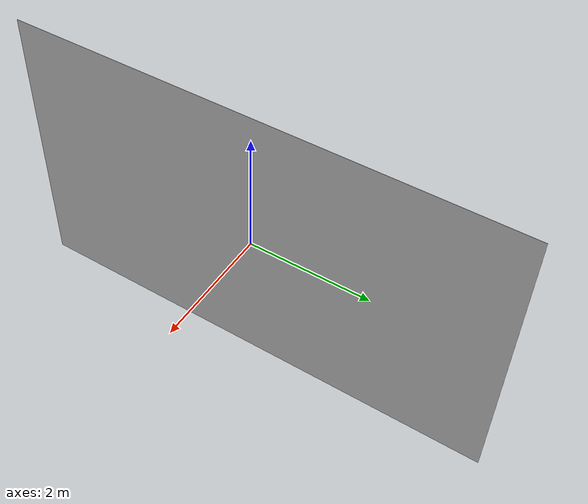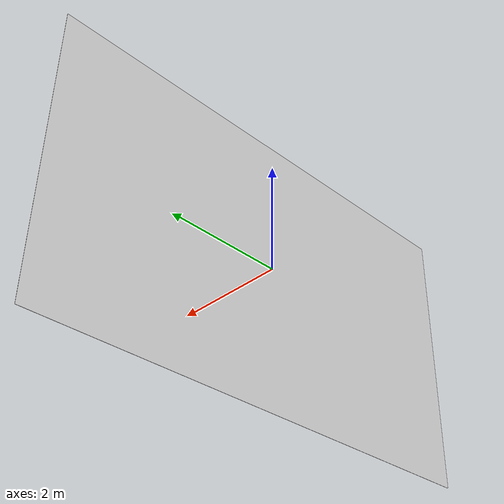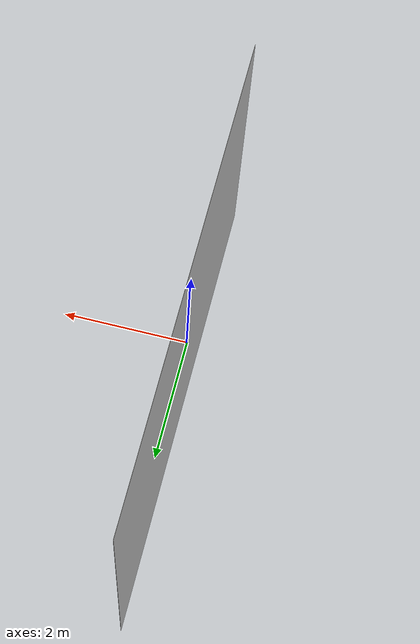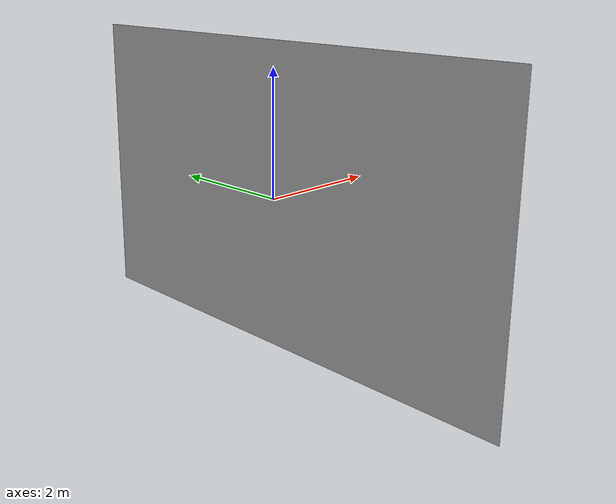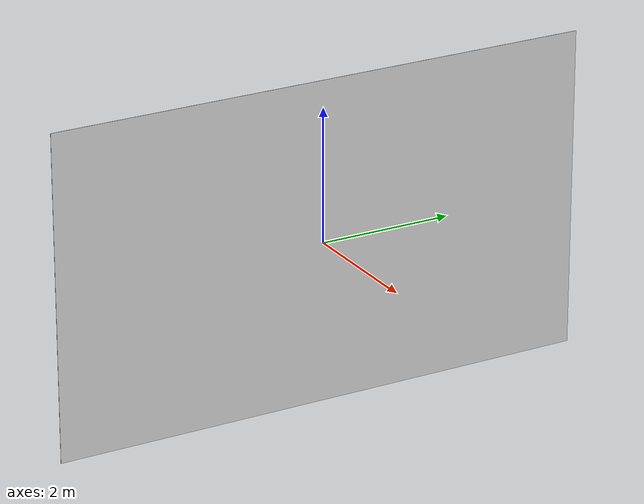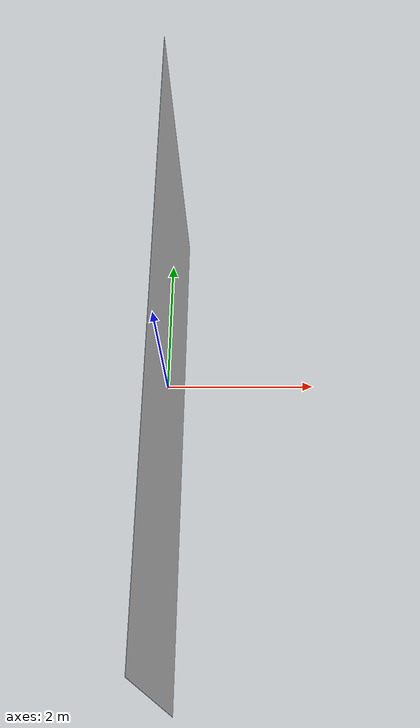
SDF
<?xml version="1.0" ?>
<sdf version="1.5">
  <model name="Calibrate_wall">
    <static>true</static>
    <link name="link">
      <collision name="collision">
        <geometry>
          <plane>
            <normal>1 0 0</normal>
            <size>4.806 8.2 </size>
          </plane>
        </geometry>
        <surface>
          <friction>
            <ode>
              <mu>100</mu>
              <mu2>50</mu2>
            </ode>
          </friction>
        </surface>
      </collision>
      <visual name="visual">
        <cast_shadows>false</cast_shadows>
        <geometry>
          <plane>
            <normal>1 0 0</normal>
            <size>4.806 8.2 </size>
          </plane>
        </geometry>
        <material>
          <script>
            <uri>model://Calibrate_wall/materials/scripts</uri>
            <uri>model://Calibrate_wall/materials/textures</uri>
            <name>Calibrate_wall/Image </name>
          </script>
        </material>
      </visual>
    </link>
  </model>
</sdf>
